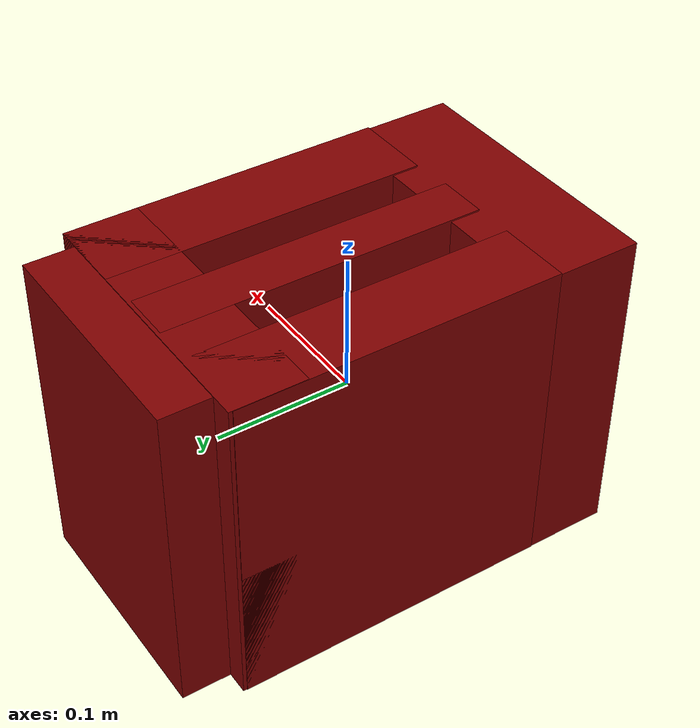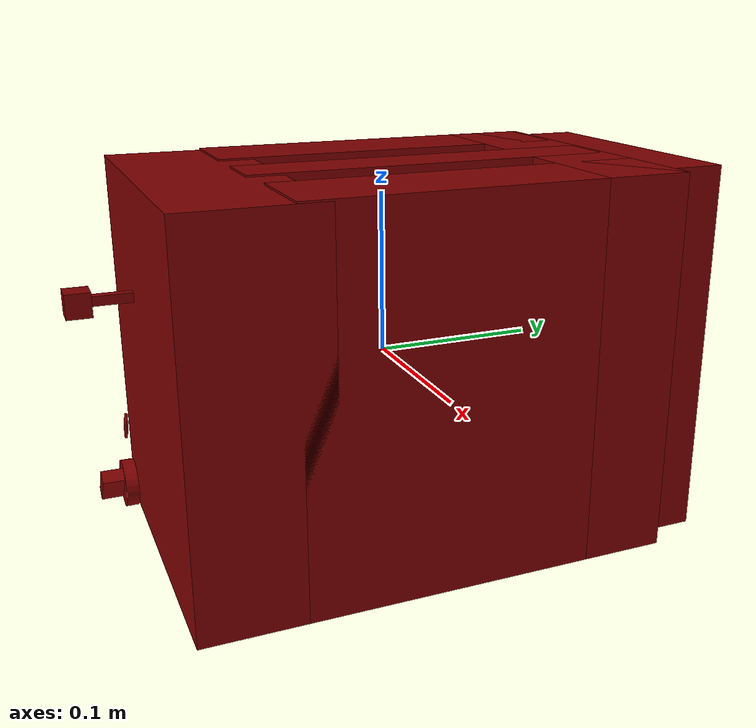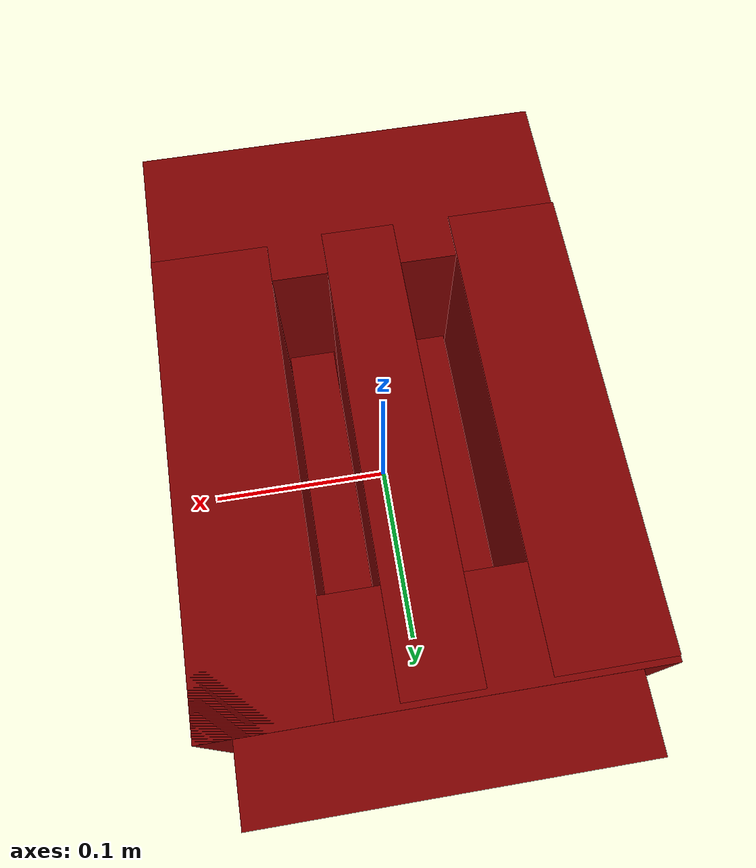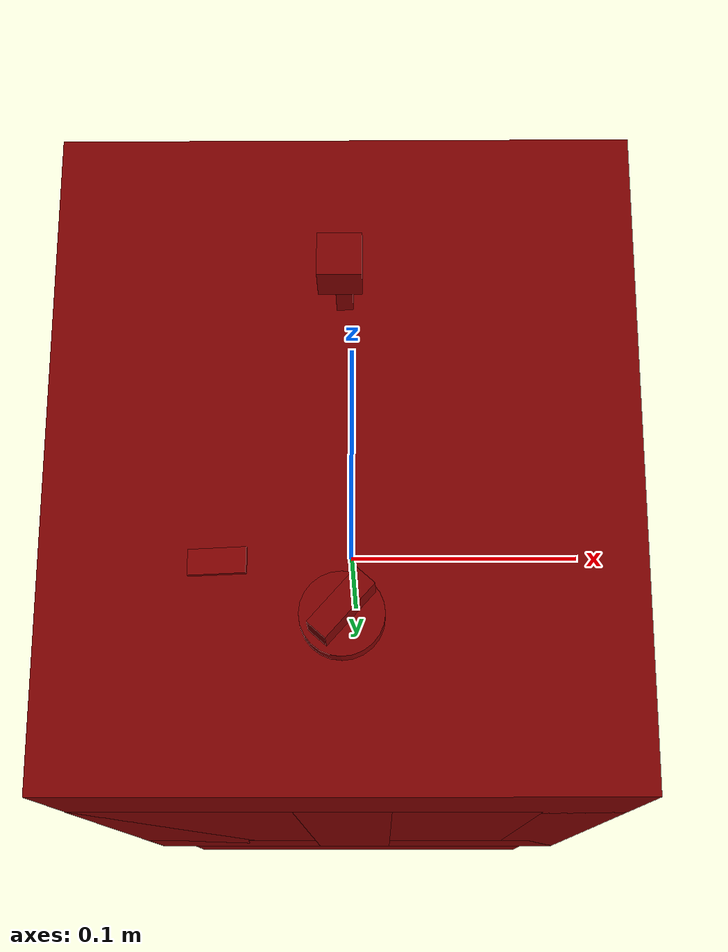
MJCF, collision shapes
<?xml version='1.0' encoding='UTF-8'?>
<mujoco model="model">
  <option timestep="0.002" gravity="0.0 0.0 -9.81"/>
  <compiler angle="radian"/>
  <asset>
    <mesh file="visuals/button_cancel.obj" name="button_cancel_vis"/>
    <mesh file="visuals/knob_doneness.obj" name="knob_doneness_vis"/>
    <mesh file="visuals/lever.obj" name="lever_vis"/>
    <mesh file="visuals/Body001.obj" name="Body001_vis"/>
    <texture file="visuals/T_BC001.png" name="Body001_material" type="2d"/>
    <material name="Body001_material" rgba="1 1 1 1.0" texture="Body001_material" shininess="0.1" specular="3"/>
    <texture file="visuals/T_BC001.png" name="button_cancel_material" type="2d"/>
    <material name="button_cancel_material" rgba="1 1 1 1.0" texture="button_cancel_material" shininess="0.1" specular="5"/>
    <texture file="visuals/T_BC001.png" name="knob_doneness_material" type="2d"/>
    <material name="knob_doneness_material" rgba="1 1 1 1.0" texture="knob_doneness_material" shininess="0.1" specular="5"/>
    <texture file="visuals/T_BC001.png" name="lever_material" type="2d"/>
    <material name="lever_material" rgba="1 1 1 1.0" texture="lever_material" shininess="0.1" specular="5"/>
  </asset>
  <default>
    <default class="visual">
      <geom conaffinity="0" contype="0" group="1" type="mesh"/>
    </default>
    <default class="collision_1">
      <geom group="0" rgba="0.5 0 0 0.5" solref="0.004 1" solimp="0.998 0.998 0.001"/>
    </default>
    <default class="collision_2">
      <geom group="0" rgba="0.5 0 0 0.5" solref="0.004 1" solimp="0.998 0.998 0.001"/>
    </default>
    <default class="collision_3">
      <geom group="0" rgba="0.5 0 0 0.5" solref="0.004 1" solimp="0.998 0.998 0.001"/>
    </default>
    <default class="collision_4">
      <geom group="0" rgba="0.5 0 0 0.5" solref="0.004 1" solimp="0.998 0.998 0.001"/>
    </default>
    <default class="spawn">
      <geom group="0" rgba="1 1 1 0.5" contype="0" conaffinity="0"/>
      <site group="0" rgba="1 1 1 0.5"/>
    </default>
    <default class="region">
      <geom group="1" conaffinity="0" contype="0" rgba="0 1 0 0" mass="0"/>
    </default>
  </default>
  <worldbody>
    <body>
      <body name="object">
        <geom mesh="Body001_vis" type="mesh" solimp="0.998 0.998 0.001" solref="0.001 1" friction="0.95 0.3 0.1" class="visual" material="Body001_material"/>
        <geom type="box" pos="0.0005283135105855763 -0.1068519800901413 -0.0005710083059966564" size="0.10186092555522919 0.04140971228480339 0.11748924851417542" quat="1.0 0.0 0.0 0.0" class="collision_1"/>
        <geom type="box" pos="0.0005283135105855763 0.12001773715019226 1.4635443790211866e-07" size="0.10186092555522919 0.026303617283701897 0.118060402572155" quat="1.0 0.0 0.0 0.0" class="collision_1"/>
        <geom type="box" pos="0.0005283135105855763 0.1580176204442978 -0.00022628616716247052" size="0.08562874794006348 0.023554740473628044 0.1178339496254921" quat="1.0 0.0 0.0 0.0" class="collision_1"/>
        <geom type="box" pos="0.07354223728179932 0.030681855976581573 1.4635443790211866e-07" size="0.028846995905041695 0.11563950031995773 0.118060402572155" quat="1.0 0.0 0.0 0.0" class="collision_1"/>
        <geom type="box" pos="-0.07463173568248749 0.027920641005039215 1.4635443790211866e-07" size="0.027127856388688087 0.11563950031995773 0.118060402572155" quat="1.0 0.0 0.0 0.0" class="collision_1"/>
        <geom type="box" pos="-0.0010982595849782228 0.027920641005039215 1.4635443790211866e-07" size="0.01815183274447918 0.11563999950885773 0.11806090176105499" quat="1.0 0.0 0.0 0.0" class="collision_1"/>
        <geom type="box" pos="-0.015046180225908756 0.027920641005039215 -0.0672919973731041" size="0.08671340346336365 0.11563950031995773 0.050768256187438965" quat="1.0 0.0 0.0 0.0" class="collision_1"/>
        <body name="button_cancel">
          <joint axis="0.0 1.0 0.0" pos="-0.03959371894598007 -0.1558576077222824 -0.043103545904159546" limited="true" name="button_cancel_joint" range="0.0 0.002" type="slide" damping="1" frictionloss="1" armature=".01" stiffness="4" springref="-1"/>
          <geom mesh="button_cancel_vis" type="mesh" solimp="0.998 0.998 0.001" solref="0.001 1" friction="0.95 0.3 0.1" class="visual" material="button_cancel_material"/>
          <geom class="collision_2" type="box" pos="-0.0402199812233448 -0.1574680507183075 -0.04279058054089546" size="0.0008329252596013248 0.009874035604298115 0.004371483810245991" quat="0.6438801884651184 0.0 0.0 -0.7651263475418091" name="button_cancel_main"/>
        </body>
        <body name="knob_doneness">
          <joint axis="0.0 1.0 0.0" pos="0.0007584544364362955 -0.1663416475057602 -0.062211014330387115" limited="true" name="knob_doneness_joint" range="0.0 4.625122517784973" type="hinge" damping="0.05" armature="1" frictionloss="0.75"/>
          <geom mesh="knob_doneness_vis" type="mesh" solimp="0.998 0.998 0.001" solref="0.001 1" friction="0.95 0.3 0.1" class="visual" material="knob_doneness_material"/>
          <geom type="cylinder" pos="0.0007898493204265833 -0.16323480010032654 -0.062223635613918304" size="0.013798180967569351 0.0036418430972844362" quat="0.5 0.5 0.4999999701976776 -0.5" class="collision_3" friction="100 0.5 0.01"/>
          <geom class="collision_3" type="box" pos="0.000833927420899272 -0.1727675199508667 -0.06156202033162117" size="0.003915498964488506 0.006732615176588297 0.011563559994101524" quat="0.9353591799736023 0.0 0.35369929671287537 0.0" name="knob_doneness_main" friction="100 0.5 0.01"/>
        </body>
        <body name="lever">
          <joint axis="0.0 0.0 -1.0" pos="4.856674058828503e-05 -0.16788893938064575 0.05059047415852547" limited="true" name="lever_joint" range="0.0 0.047" type="slide" damping="1" frictionloss="1" armature=".1" stiffness="2.4" springref="-0.5"/>
          <geom class="region" name="reg_slotL" type="box" pos="-0.032523684203624725 0.01512584462761879 0.11807188019156456" size="0.016339363366365434 0.07513600757718086 0.07599996200203896"/>
          <geom class="region" name="reg_slotR" type="box" pos="0.03081946074962616 0.01512584462761879 0.11807188019156456" size="0.016173040330410005 0.07513600757718086 0.07599996200203896"/>
          <geom mesh="lever_vis" type="mesh" solimp="0.998 0.998 0.001" solref="0.001 1" friction="0.95 0.3 0.1" class="visual" material="lever_material"/>
          <geom type="box" pos="0.0009341032127849758 -0.16396722197532654 0.05159571394324303" size="0.002866933820769191 0.012153051793575287 0.002866933820769191" quat="1.0 0.0 0.0 0.0" class="collision_4"/>
          <geom class="collision_4" type="box" pos="0.0 -0.18228472769260406 0.05061078444123268" size="0.007315100636333227 0.007315100636333227 0.007315100636333227" quat="1.0 0.0 0.0 0.0" name="lever_handle"/>
          <geom class="collision_4" type="box" pos="-0.033261898905038834 0.014149903319776058 0.04240981489419937" size="0.012550000101327896 0.07750934362411499 0.0002576248662080616" quat="1.0 0.0 0.0 0.0" name="slotL_floor"/>
          <geom class="collision_4" type="box" pos="0.031177174299955368 0.014149903319776058 0.04240981489419937" size="0.012550000101327896 0.07750934362411499 0.0002576248662080616" quat="1.0 0.0 0.0 0.0" name="slotR_floor"/>
        </body>
        <geom class="region" name="reg_main" type="box" pos="1.862645149230957e-09 0.014761209487915039 0.0" size="0.10770413821935654 0.17698956823349 0.11906052923202515"/>
      </body>
    </body>
  </worldbody>
  <actuator>
    <motor name="button_cancel_joint_actuator" joint="button_cancel_joint" gear="0.5"/>
    <motor name="knob_doneness_joint_actuator" joint="knob_doneness_joint" gear="0.5"/>
    <motor name="lever_joint_actuator" joint="lever_joint" gear="0.5"/>
  </actuator>
</mujoco>
